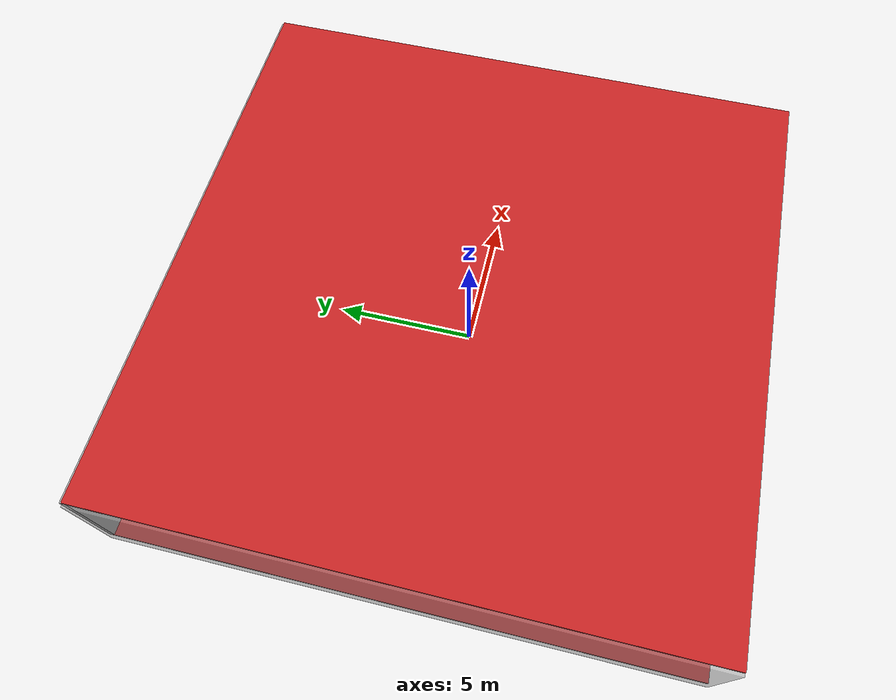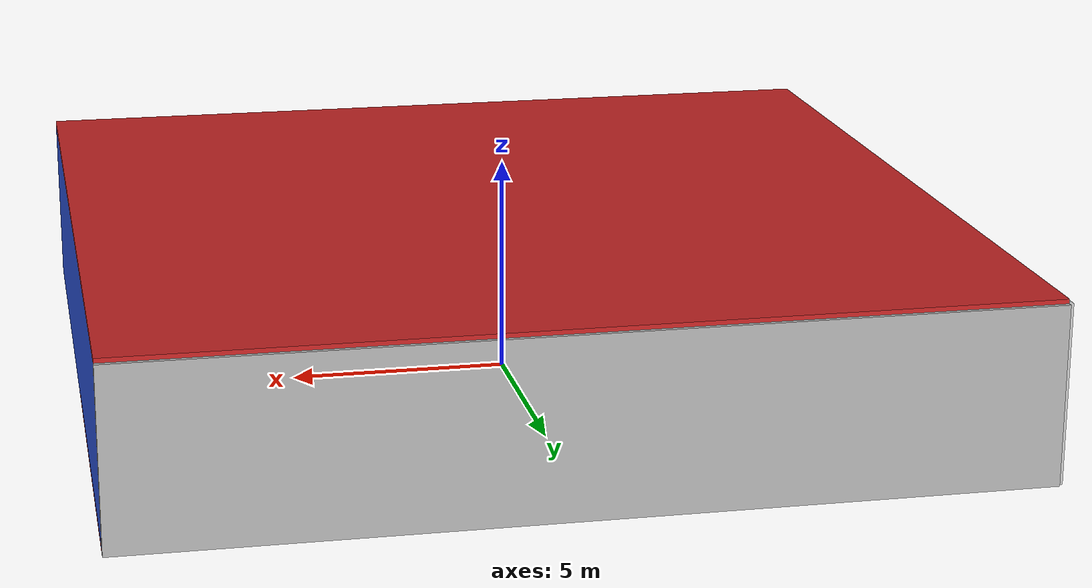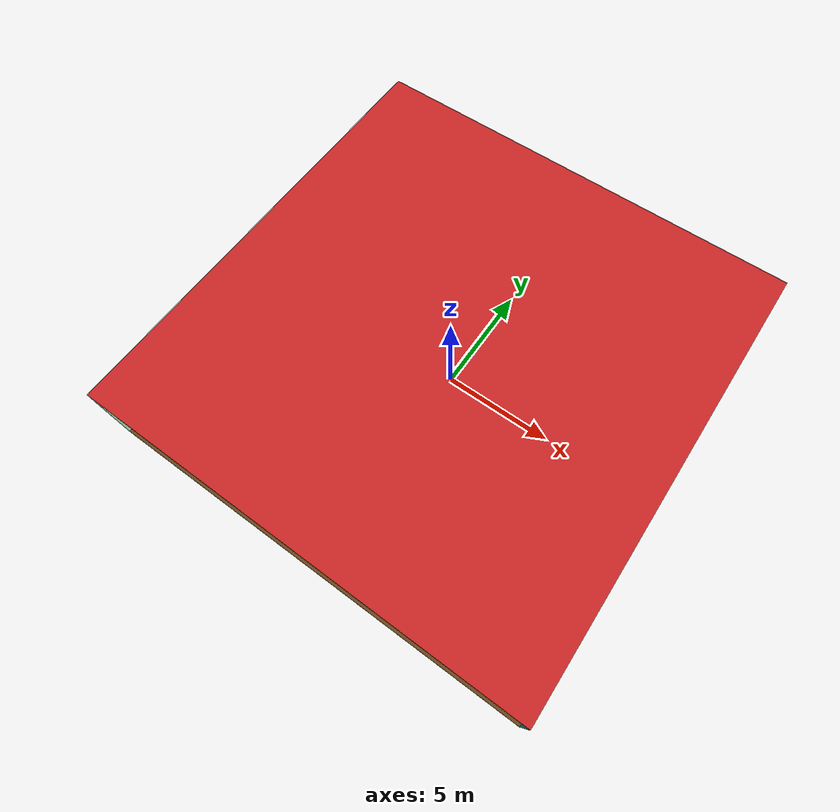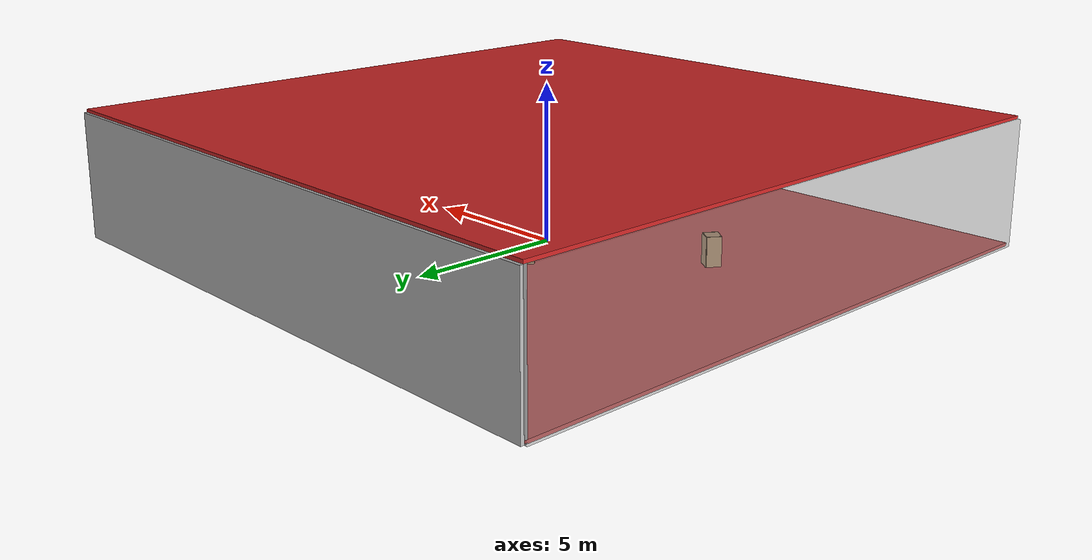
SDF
<sdf version="1.4">
 <world name="default">
  <physics type="ode">
   <max_step_size>0.001</max_step_size>
   <real_time_factor>1</real_time_factor>
   <real_time_update_rate>1000</real_time_update_rate>
   <gravity>0 0 -9.8</gravity>
  </physics>
  <scene><ambient>0.4 0.4 0.4 1</ambient><background>0.7 0.7 0.7 1</background><shadows>1</shadows></scene>
  <model name="Surrounding">
   <static>1</static>
   <link name="Ceiling">
    <collision name="Ceiling_Collision"><geometry><box><size>20 20 0.1</size></box></geometry></collision>
    <visual name="Ceiling_Visual">
     <geometry><box><size>20 20 0.1</size></box></geometry>
     <material>
      <script><uri>file://media/materials/scripts/gazebo.material</uri><name>Gazebo/RedBright</name></script>
     </material>
    </visual>
    <pose>0 0 4.05 0 0 0</pose>
   </link>
   <link name="Wall_South">
    <collision name="Wall_South_Collision">
     <geometry><box><size>20 0 4</size></box></geometry>
     <pose>0 0 2 0 -0 0</pose>
    </collision>
    <visual name="Wall_South_Visual">
     <pose>0 0 2 0 -0 0</pose>
     <geometry><box><size>20 0 4</size></box></geometry>
     <material>
      <script><uri>file://media/materials/scripts/gazebo.material</uri><name>Gazebo/GreenTransparent</name></script>
     </material>
    </visual>
    <velocity_decay><linear>0</linear><angular>0</angular></velocity_decay>
    <pose>0 -10 0 0 -0 0</pose>
   </link>
   <link name="Wall_East">
    <collision name="Wall_21_Collision">
     <geometry><box><size>20 0 4</size></box></geometry>
     <pose>0 0 2 0 -0 0</pose>
    </collision>
    <visual name="Wall_21_Visual">
     <pose>0 0 2 0 -0 0</pose>
     <geometry><box><size>20 0 4</size></box></geometry>
     <material>
      <script><uri>file://media/materials/scripts/gazebo.material</uri><name>Gazebo/BlueGlow</name></script>
     </material>
    </visual>
    <velocity_decay><linear>0</linear><angular>0</angular></velocity_decay>
    <pose>10 0 0 0 -0 1.5708</pose>
   </link>
   <link name="Wall_North">
    <collision name="Wall_22_Collision">
     <geometry><box><size>20 0.2 4</size></box></geometry>
     <pose>0 0 2 0 -0 0</pose>
    </collision>
    <visual name="Wall_22_Visual">
     <pose>0 0 2 0 -0 0</pose>
     <geometry><box><size>20 0.2 4</size></box></geometry>
     <material>
      <script><uri>file://media/materials/scripts/gazebo.material</uri><name>Gazebo/JointAnchor</name></script>
     </material>
    </visual>
    <velocity_decay><linear>0</linear><angular>0</angular></velocity_decay>
    <pose>0 10 0 0 -0 0</pose>
   </link>
   <link name="Wall_West">
    <collision name="Wall_23_Collision">
     <geometry><box><size>20 0.2 4</size></box></geometry>
     <pose>0 0 2 0 -0 0</pose>
    </collision>
    <visual name="Wall_23_Visual">
     <pose>0 0 2 0 -0 0</pose>
     <geometry><box><size>20 0.2 4</size></box></geometry>
     <material>
      <script><uri>file://media/materials/scripts/gazebo.material</uri><name>Gazebo/GreyTransparent</name></script>
     </material>
    </visual>
    <velocity_decay><linear>0</linear><angular>0</angular></velocity_decay>
    <pose>-10 0 0 0 0 -1.5708</pose>
   </link>
   <link name="Ground_link">
    <collision name="collision">
     <pose>0 0 .05 0 -0 0</pose>
     <geometry><box><size>20 20 0.1</size></box></geometry>
    </collision>
    <visual name="visual">
     <pose>0 0 .05 0 -0 0</pose>
     <geometry><box><size>20 20 0.1</size></box></geometry>
     <material>
      <script><uri>file://media/materials/scripts/gazebo.material</uri><name>Gazebo/RedBright</name></script>
     </material>
    </visual>
   </link>
   <static>1</static>
  </model>
  <spherical_coordinates>
   <surface_model>EARTH_WGS84</surface_model>
   <latitude_deg>0</latitude_deg>
   <longitude_deg>0</longitude_deg>
   <elevation>0</elevation>
   <heading_deg>0</heading_deg>
  </spherical_coordinates>
  <light name="lightball_0" type="diffuse">
   <diffuse>0.8 0.8 0.8 1</diffuse>
   <specular>0.2 0.2 0.2 1</specular>
   <attenuation>
    <range>100</range>
    <constant>0.7</constant>
    <linear>0.01</linear>
    <quadratic>0.001</quadratic>
   </attenuation>
   <direction>-0.5 0.1 -0.9</direction>
   <pose>8.15691141525 1.04482912128 0.713979054591 0 0 0</pose>
  </light>
  <light name="lightball_1" type="diffuse">
   <diffuse>0.8 0.8 0.8 1</diffuse>
   <specular>0.2 0.2 0.2 1</specular>
   <attenuation>
    <range>100</range>
    <constant>0.7</constant>
    <linear>0.01</linear>
    <quadratic>0.001</quadratic>
   </attenuation>
   <direction>-0.5 0.1 -0.9</direction>
   <pose>7.82341211098 6.95991613783 0.847031332544 0 0 0</pose>
  </light>
  <light name="lightball_2" type="diffuse">
   <diffuse>0.8 0.8 0.8 1</diffuse>
   <specular>0.2 0.2 0.2 1</specular>
   <attenuation>
    <range>100</range>
    <constant>0.7</constant>
    <linear>0.01</linear>
    <quadratic>0.001</quadratic>
   </attenuation>
   <direction>-0.5 0.1 -0.9</direction>
   <pose>-6.89108431085 -7.9307101139 1.41847320611 0 0 0</pose>
  </light>
  <light name="lightball_3" type="diffuse">
   <diffuse>0.8 0.8 0.8 1</diffuse>
   <specular>0.2 0.2 0.2 1</specular>
   <attenuation>
    <range>100</range>
    <constant>0.7</constant>
    <linear>0.01</linear>
    <quadratic>0.001</quadratic>
   </attenuation>
   <direction>-0.5 0.1 -0.9</direction>
   <pose>6.48443758795 9.71905906148 3.79839708022 0 0 0</pose>
  </light>
  <light name="lightball_4" type="diffuse">
   <diffuse>0.8 0.8 0.8 1</diffuse>
   <specular>0.2 0.2 0.2 1</specular>
   <attenuation>
    <range>100</range>
    <constant>0.7</constant>
    <linear>0.01</linear>
    <quadratic>0.001</quadratic>
   </attenuation>
   <direction>-0.5 0.1 -0.9</direction>
   <pose>0.432946952895 -3.48875798783 1.55183286813 0 0 0</pose>
  </light>
  <light name="lightball_5" type="diffuse">
   <diffuse>0.8 0.8 0.8 1</diffuse>
   <specular>0.2 0.2 0.2 1</specular>
   <attenuation>
    <range>100</range>
    <constant>0.7</constant>
    <linear>0.01</linear>
    <quadratic>0.001</quadratic>
   </attenuation>
   <direction>-0.5 0.1 -0.9</direction>
   <pose>-6.3150572673 0.55298679482 0.695147331895 0 0 0</pose>
  </light>
  <light name="lightball_6" type="diffuse">
   <diffuse>0.8 0.8 0.8 1</diffuse>
   <specular>0.2 0.2 0.2 1</specular>
   <attenuation>
    <range>100</range>
    <constant>0.7</constant>
    <linear>0.01</linear>
    <quadratic>0.001</quadratic>
   </attenuation>
   <direction>-0.5 0.1 -0.9</direction>
   <pose>-6.19612915495 1.90543557334 1.97547023103 0 0 0</pose>
  </light>
  <light name="lightball_7" type="diffuse">
   <diffuse>0.8 0.8 0.8 1</diffuse>
   <specular>0.2 0.2 0.2 1</specular>
   <attenuation>
    <range>100</range>
    <constant>0.7</constant>
    <linear>0.01</linear>
    <quadratic>0.001</quadratic>
   </attenuation>
   <direction>-0.5 0.1 -0.9</direction>
   <pose>0.574018525253 -9.88713728097 2.36666206867 0 0 0</pose>
  </light>
  <light name="lightball_8" type="diffuse">
   <diffuse>0.8 0.8 0.8 1</diffuse>
   <specular>0.2 0.2 0.2 1</specular>
   <attenuation>
    <range>100</range>
    <constant>0.7</constant>
    <linear>0.01</linear>
    <quadratic>0.001</quadratic>
   </attenuation>
   <direction>-0.5 0.1 -0.9</direction>
   <pose>-0.461097117477 5.67624246431 2.10344658279 0 0 0</pose>
  </light>
  <light name="lightball_9" type="diffuse">
   <diffuse>0.8 0.8 0.8 1</diffuse>
   <specular>0.2 0.2 0.2 1</specular>
   <attenuation>
    <range>100</range>
    <constant>0.7</constant>
    <linear>0.01</linear>
    <quadratic>0.001</quadratic>
   </attenuation>
   <direction>-0.5 0.1 -0.9</direction>
   <pose>-6.45393541304 5.97315989966 2.2769491855 0 0 0</pose>
  </light>
  <include><uri>model://cabinet</uri><pose>-5.16827579875 -1.75665457832 0 0 0 0.98163504907</pose></include>
  <include><uri>model://table</uri><pose>-4.04468487508 7.64006318259 0 0 0 0.266492353232</pose></include>
  <include><uri>model://cabinet</uri><pose>-1.26100356327 1.99574273126 0 0 0 2.339732872</pose></include>
  <include><uri>model://cabinet</uri><pose>1.29663450959 -1.83288184204 0 0 0 2.18130205092</pose></include>
  <include><uri>model://cabinet</uri><pose>3.83322080307 4.00570572737 0 0 0 3.07919624202</pose></include>
  <include>
   <uri>model://textured_shapes</uri>
   <pose>6.81032683716 2.00296458461 0 0 0 2.77624501332</pose>
  </include>
 </world>
</sdf>

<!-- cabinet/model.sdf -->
<sdf version="1.5">
  <model name="cabinet">
    <static>true</static>
    <link name="cabinet_bottom_plate">
      <inertial>
        <pose>0 0 -1 0 0 0</pose>
        <inertia>
          <ixx>2.050000</ixx>
          <ixy>0</ixy>
          <ixz>0</ixz>
          <iyy>2.050000</iyy>
          <iyz>0</iyz>
          <izz>2.050000</izz>
        </inertia>
        <mass>25.000000</mass>
      </inertial>
      <collision name="cabinet_bottom_plate_geom">
        <pose>0 0 0.010000 0 0 0</pose>
        <geometry>
          <box>
            <size>0.450000 0.450000 0.020000</size>
          </box>
        </geometry>
      </collision>
      <visual name="cabinet_bottom_plate_geom_visual">
        <pose>0 0 0.010000 0 0 0</pose>
        <geometry>
          <box>
            <size>0.450000 0.450000 0.020000</size>
          </box>
        </geometry>
        <material>
          <script>
            <uri>model://media/materials/scripts/gazebo.material</uri>
            <name>Gazebo/Wood</name>
          </script>
        </material>
      </visual>
      <collision name="cabinet_bottom_plate_geom_cabinet_back_plate">
        <pose>0.235000 0 0.510000 0 0 0</pose>
        <geometry>
          <box>
            <size>0.020000 0.450000 1.020000</size>
          </box>
        </geometry>
      </collision>
      <visual name="cabinet_bottom_plate_geom_cabinet_back_plate_visual">
        <pose>0.235000 0 0.510000 0 0 0</pose>
        <geometry>
          <box>
            <size>0.020000 0.450000 1.020000</size>
          </box>
        </geometry>
        <material>
          <script>
            <uri>model://media/materials/scripts/gazebo.material</uri>
            <name>Gazebo/Wood</name>
          </script>
        </material>
      </visual>
      <collision name="cabinet_bottom_plate_geom_cabinet_left_plate">
        <pose>0 0.235000 0.510000 0 0 0</pose>
        <geometry>
          <box>
            <size>0.450000 0.020000 1.020000</size>
          </box>
        </geometry>
      </collision>
      <visual name="cabinet_bottom_plate_geom_cabinet_left_plate_visual">
        <pose>0 0.235000 0.510000 0 0 0</pose>
        <geometry>
          <box>
            <size>0.450000 0.020000 1.020000</size>
          </box>
        </geometry>
        <material>
          <script>
            <uri>model://media/materials/scripts/gazebo.material</uri>
            <name>Gazebo/Wood</name>
          </script>
        </material>
      </visual>
      <collision name="cabinet_bottom_plate_geom_cabinet_middle_plate">
        <pose>0 0 0.510000 0 0 0</pose>
        <geometry>
          <box>
            <size>0.450000 0.450000 0.020000</size>
          </box>
        </geometry>
      </collision>
      <visual name="cabinet_bottom_plate_geom_cabinet_middle_plate_visual">
        <pose>0 0 0.510000 0 0 0</pose>
        <geometry>
          <box>
            <size>0.450000 0.450000 0.020000</size>
          </box>
        </geometry>
        <material>
          <script>
            <uri>model://media/materials/scripts/gazebo.material</uri>
            <name>Gazebo/Wood</name>
          </script>
        </material>
      </visual>
      <collision name="cabinet_bottom_plate_geom_cabinet_right_plate">
        <pose>0 -0.235000 0.510000 0 0 0</pose>
        <geometry>
          <box>
            <size>0.450000 0.020000 1.020000</size>
          </box>
        </geometry>
      </collision>
      <visual name="cabinet_bottom_plate_geom_cabinet_right_plate_visual">
        <pose>0 -0.235000 0.510000 0 0 0</pose>
        <geometry>
          <box>
            <size>0.450000 0.020000 1.020000</size>
          </box>
        </geometry>
        <material>
          <script>
            <uri>model://media/materials/scripts/gazebo.material</uri>
            <name>Gazebo/Wood</name>
          </script>
        </material>
      </visual>
      <collision name="cabinet_bottom_plate_geom_cabinet_top_plate">
        <pose>0 0 1.010000 0 0 0</pose>
        <geometry>
          <box>
            <size>0.450000 0.450000 0.020000</size>
          </box>
        </geometry>
      </collision>
      <visual name="cabinet_bottom_plate_geom_cabinet_top_plate_visual">
        <pose>0 0 1.010000 0 0 0</pose>
        <geometry>
          <box>
            <size>0.450000 0.450000 0.020000</size>
          </box>
        </geometry>
        <material>
          <script>
            <uri>model://media/materials/scripts/gazebo.material</uri>
            <name>Gazebo/Wood</name>
          </script>
        </material>
      </visual>
    </link>
  </model>
</sdf>

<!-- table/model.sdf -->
<sdf version="1.5">
  <model name="table">
    <static>true</static>
    <link name="link">
      <collision name="surface">
        <pose>0 0 1.0 0 0 0</pose>
        <geometry>
          <box>
            <size>1.5 0.8 0.03</size>
          </box>
        </geometry>
        <surface>
          <friction>
            <ode>
              <mu>0.6</mu>
              <mu2>0.6</mu2>
            </ode>
          </friction>
        </surface>
      </collision>
      <visual name="visual1">
        <pose>0 0 1.0 0 0 0</pose>
        <geometry>
          <box>
            <size>1.5 0.8 0.03</size>
          </box>
        </geometry>
        <material>
          <script>
            <uri>model://media/materials/scripts/gazebo.material</uri>
            <name>Gazebo/Wood</name>
          </script>
        </material>
      </visual>
      <collision name="front_left_leg">
        <pose>0.68 0.38 0.5 0 0 0</pose>
        <geometry>
          <cylinder>
            <radius>0.02</radius>
            <length>1.0</length>
          </cylinder>
        </geometry>
      </collision>
      <visual name="front_left_leg">
        <pose>0.68 0.38 0.5 0 0 0</pose>
        <geometry>
          <cylinder>
            <radius>0.02</radius>
            <length>1.0</length>
          </cylinder>
        </geometry>
        <material>
          <script>
            <uri>model://media/materials/scripts/gazebo.material</uri>
            <name>Gazebo/Grey</name>
          </script>
        </material>
      </visual>
      <collision name="front_right_leg">
        <pose>0.68 -0.38 0.5 0 0 0</pose>
        <geometry>
          <cylinder>
            <radius>0.02</radius>
            <length>1.0</length>
          </cylinder>
        </geometry>
      </collision>
      <visual name="front_right_leg">
        <pose>0.68 -0.38 0.5 0 0 0</pose>
        <geometry>
          <cylinder>
            <radius>0.02</radius>
            <length>1.0</length>
          </cylinder>
        </geometry>
        <material>
          <script>
            <uri>model://media/materials/scripts/gazebo.material</uri>
            <name>Gazebo/Grey</name>
          </script>
        </material>
      </visual>
      <collision name="back_right_leg">
        <pose>-0.68 -0.38 0.5 0 0 0</pose>
        <geometry>
          <cylinder>
            <radius>0.02</radius>
            <length>1.0</length>
          </cylinder>
        </geometry>
      </collision>
      <visual name="back_right_leg">
        <pose>-0.68 -0.38 0.5 0 0 0</pose>
        <geometry>
          <cylinder>
            <radius>0.02</radius>
            <length>1.0</length>
          </cylinder>
        </geometry>
        <material>
          <script>
            <uri>model://media/materials/scripts/gazebo.material</uri>
            <name>Gazebo/Grey</name>
          </script>
        </material>
      </visual>
      <collision name="back_left_leg">
        <pose>-0.68 0.38 0.5 0 0 0</pose>
        <geometry>
          <cylinder>
            <radius>0.02</radius>
            <length>1.0</length>
          </cylinder>
        </geometry>
      </collision>
      <visual name="back_left_leg">
        <pose>-0.68 0.38 0.5 0 0 0</pose>
        <geometry>
          <cylinder>
            <radius>0.02</radius>
            <length>1.0</length>
          </cylinder>
        </geometry>
        <material>
          <script>
            <uri>model://media/materials/scripts/gazebo.material</uri>
            <name>Gazebo/Grey</name>
          </script>
        </material>
      </visual>
    </link>
  </model>
</sdf>

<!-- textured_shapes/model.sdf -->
<sdf version="1.6">
  <model name="textured_shapes">
    <pose>0 0 0.5 0 0 0</pose>
    <link name="box">
      <pose>0 -1.5 0 0 0 0</pose>
      <collision name="collision">
        <geometry>
          <box>
            <size>1 1 1</size>
          </box>
        </geometry>
      </collision>
      <visual name="visual">
        <geometry>
          <box>
            <size>1 1 1</size>
          </box>
        </geometry>
        <material>
          <script>
            <uri>model://../model_source/models/textured_shapes/materials/scripts</uri>
            <uri>model://../model_source/models/textured_shapes/materials/textures</uri>
            <name>TexturedShape/Squares</name>
          </script>
        </material>
      </visual>
    </link>
    <link name="sphere">
      <collision name="collision">
        <geometry>
          <sphere>
            <radius>0.5</radius>
          </sphere>
        </geometry>
      </collision>
      <visual name="visual">
        <geometry>
          <sphere>
            <radius>0.5</radius>
          </sphere>
        </geometry>
        <material>
          <script>
            <uri>model://../model_source/models/textured_shapes/materials/scripts</uri>
            <uri>model://../model_source/models/textured_shapes/materials/textures</uri>
            <name>TexturedShape/Squares</name>
          </script>
        </material>
      </visual>
    </link>
    <link name="cylinder">
      <pose>0 1.5 0 0 0 0</pose>
      <collision name="collision">
        <geometry>
          <cylinder>
            <radius>0.5</radius>
            <length>1</length>
          </cylinder>
        </geometry>
      </collision>
      <visual name="visual">
        <geometry>
          <cylinder>
            <radius>0.5</radius>
            <length>1</length>
          </cylinder>
        </geometry>
        <material>
          <script>
            <uri>model://../model_source/models/textured_shapes/materials/scripts</uri>
            <uri>model://../model_source/models/textured_shapes/materials/textures</uri>
            <name>TexturedShape/Squares</name>
          </script>
        </material>
      </visual>
    </link>
  </model>
</sdf>
